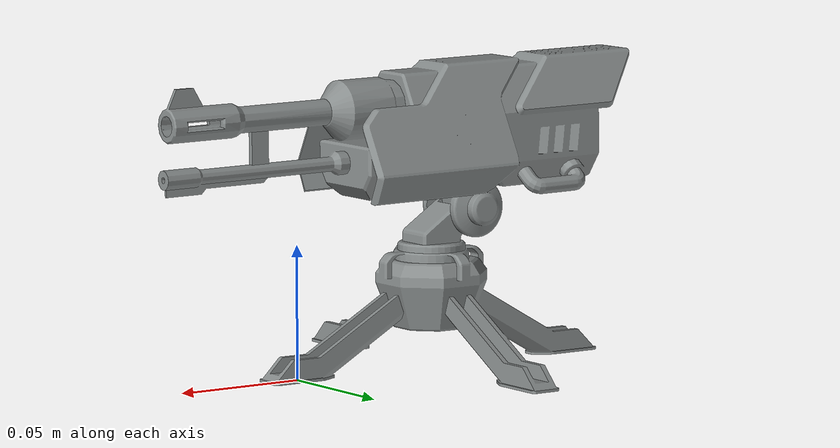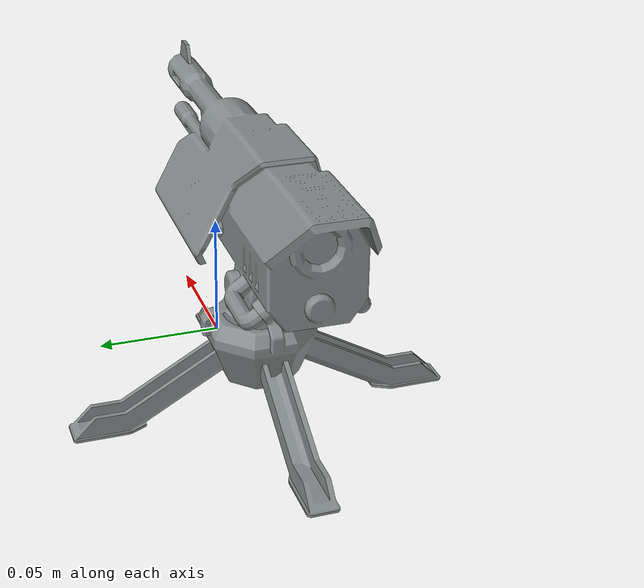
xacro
<robot xmlns:xacro="http://www.ros.org/wiki/xacro" name="turret_description">

  <xacro:property name="PI" value="3.1415926535897931"/>
  <xacro:property name="joint_effort" value="100.0"/>
  <xacro:property name="joint_velocity" value="3.14"/>
  <xacro:property name="joint_damping" value="0.1"/>
  <xacro:property name="joint_friction" value="0.1"/>

  <material name="grey">
    <color rgba="0.52941 0.54902 0.54902 1"/>
  </material>

  <link name="world"/>
  <joint name="world_fixed" type="fixed">
    <parent link="world"/>
    <child link="base_link"/>
    <origin xyz="0 0 0" rpy="0 0 0"/>
  </joint>

  <link name="base_link">
    <inertial>
      <origin xyz="-0.059907 1.301E-17 0.022839" rpy="0 0 0" />
      <mass value="0.28603" />
      <inertia ixx="0.00013769" ixy="0.0" ixz="0.0" iyy="0.00013769" iyz="0.0" izz="0.00022916" />
    </inertial>
    <visual>
      <geometry>
        <mesh filename="package://turret_description/meshes/base_link.STL" />
      </geometry>
      <material name="grey"/>
    </visual>
    <collision>
      <geometry>
        <mesh filename="package://turret_description/meshes/base_link.STL" />
      </geometry>
    </collision>
  </link>

  <link name="Horizontal_Link">
    <inertial>
      <origin xyz="-0.0013345 1.7795E-05 0.0067059" rpy="0 0 0" />
      <mass value="0.059322" />
      <inertia ixx="4.4326E-06" ixy="0.0" ixz="8.3795E-07" iyy="4.8715E-06" iyz="0.0" izz="3.5927E-06" />
    </inertial>
    <visual>
      <geometry>
        <mesh filename="package://turret_description/meshes/Horizontal_Link.STL" />
      </geometry>
      <material name="grey"/>
    </visual>
    <collision>
      <geometry>
        <mesh filename="package://turret_description/meshes/Horizontal_Link.STL" />
      </geometry>
    </collision>
  </link>

  <joint name="Horizontal_Joint" type="revolute"> <origin xyz="-0.059907 0 0.038897" rpy="0 0 0" />
      <parent link="base_link" />
      <child link="Horizontal_Link" />
      <axis xyz="0 0 1" />
      <limit lower="-3.14" upper="3.14" effort="${joint_effort}" velocity="${joint_velocity}" />
      <dynamics damping="${joint_damping}" friction="${joint_friction}" />
  </joint>

  <link name="Vertical_Link">
    <inertial>
      <origin xyz="0.013867 0.027537 -1.0361E-08" rpy="0 0 0" />
      <mass value="0.664" />
      <inertia ixx="0.00023872" ixy="5.5153E-05" ixz="0.0" iyy="0.0011211" iyz="0.0" izz="0.0011439" />
    </inertial>
    <visual>
      <origin xyz="0 0 0" rpy="0 0 0" />
      <geometry>
        <mesh filename="package://turret_description/meshes/Vertical_Link.STL" />
      </geometry>
      <material name="grey"/>
    </visual>
    <collision>
      <origin xyz="0 0 0" rpy="0 0 0" />
      <geometry>
        <mesh filename="package://turret_description/meshes/Vertical_Link.STL" />
      </geometry>
    </collision>
  </link>

  <joint name="Vertical_Joint" type="revolute">
    <origin xyz="-0.014074 0.00018767 0.020525" rpy="1.5708 0 -0.013334" />
    <parent link="Horizontal_Link" />
    <child link="Vertical_Link" />
    <axis xyz="0 0 -1" />
    <limit lower="-0.262" upper="0.785" effort="${joint_effort}" velocity="${joint_velocity}" />
    <dynamics damping="${joint_damping}" friction="${joint_friction}" />
  </joint>

<gazebo reference="base_link">
    <material>
      <ambient>0.53 0.55 0.55 1</ambient>
      <diffuse>0.53 0.55 0.55 1</diffuse>
      <specular>0.1 0.1 0.1 1</specular>
      <emissive>0 0 0 1</emissive>
    </material>
  </gazebo>

  <gazebo reference="Horizontal_Link">
    <material>
      <ambient>0.53 0.55 0.55 1</ambient>
      <diffuse>0.53 0.55 0.55 1</diffuse>
      <specular>0.1 0.1 0.1 1</specular>
    </material>
  </gazebo>

  <gazebo reference="Vertical_Link">
    <material>
      <ambient>0.53 0.55 0.55 1</ambient>
      <diffuse>0.53 0.55 0.55 1</diffuse>
      <specular>0.1 0.1 0.1 1</specular>
    </material>
  </gazebo>

<gazebo>
  <plugin name="gazebo_ros2_control" filename="libgazebo_ros2_control.so">
    <parameters>$(find turret_simulation)/config/turret_controllers.yaml</parameters>
    <ros>
      <remapping>robot_description:=robot_description</remapping>
    </ros>
  </plugin>
</gazebo>

<ros2_control name="GazeboSystem" type="system">
  <hardware>
    <plugin>gazebo_ros2_control/GazeboSystem</plugin>
  </hardware>
  <joint name="Horizontal_Joint">
    <command_interface name="position"/>
    <command_interface name="velocity"/>
    <state_interface name="position"/>
    <state_interface name="velocity"/>
    </joint>
  <joint name="Vertical_Joint">
    <command_interface name="position"/>
    <command_interface name="velocity"/>
    <state_interface name="position"/>
    <state_interface name="velocity"/>
    </joint>
</ros2_control>

</robot>
